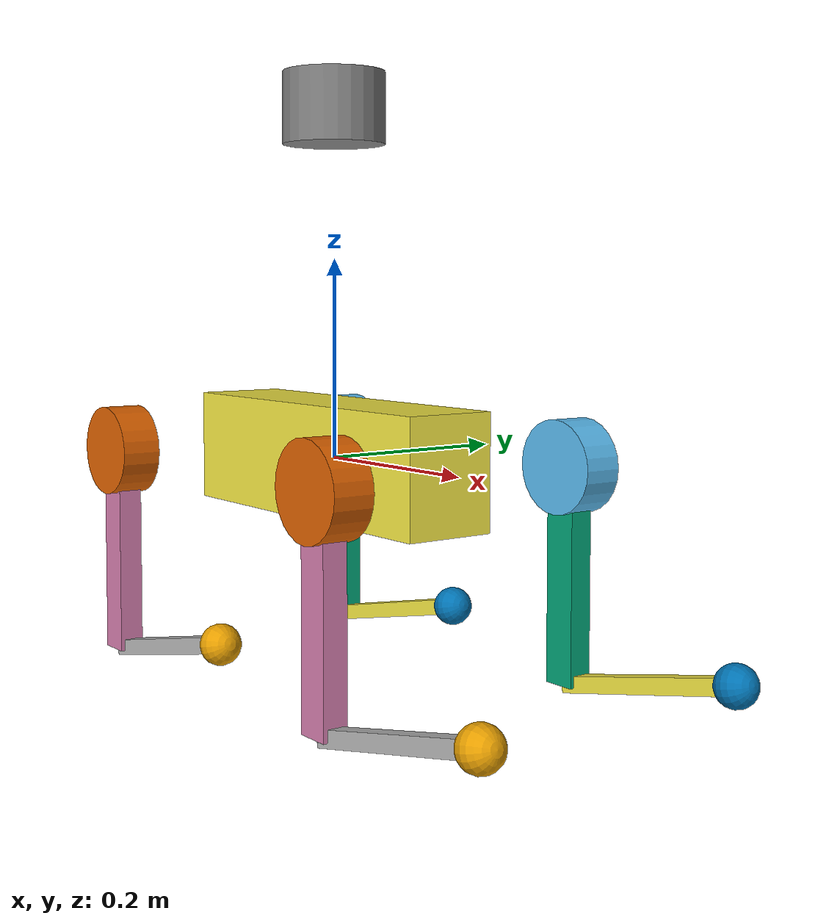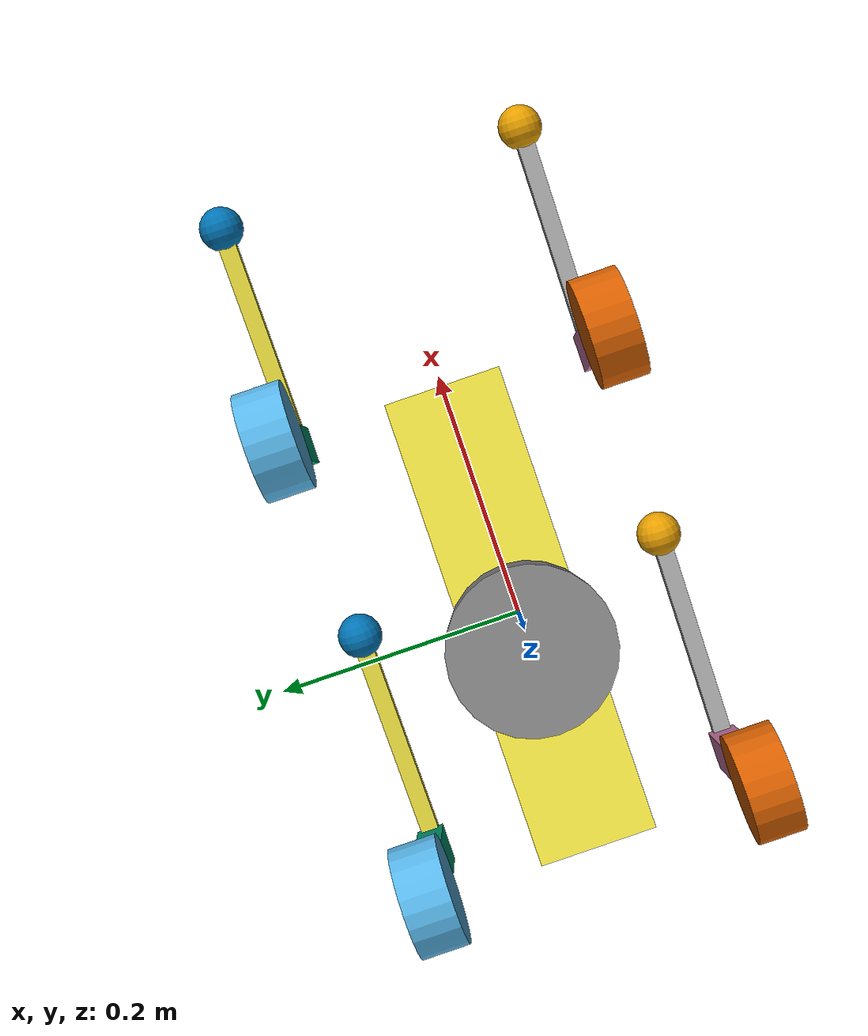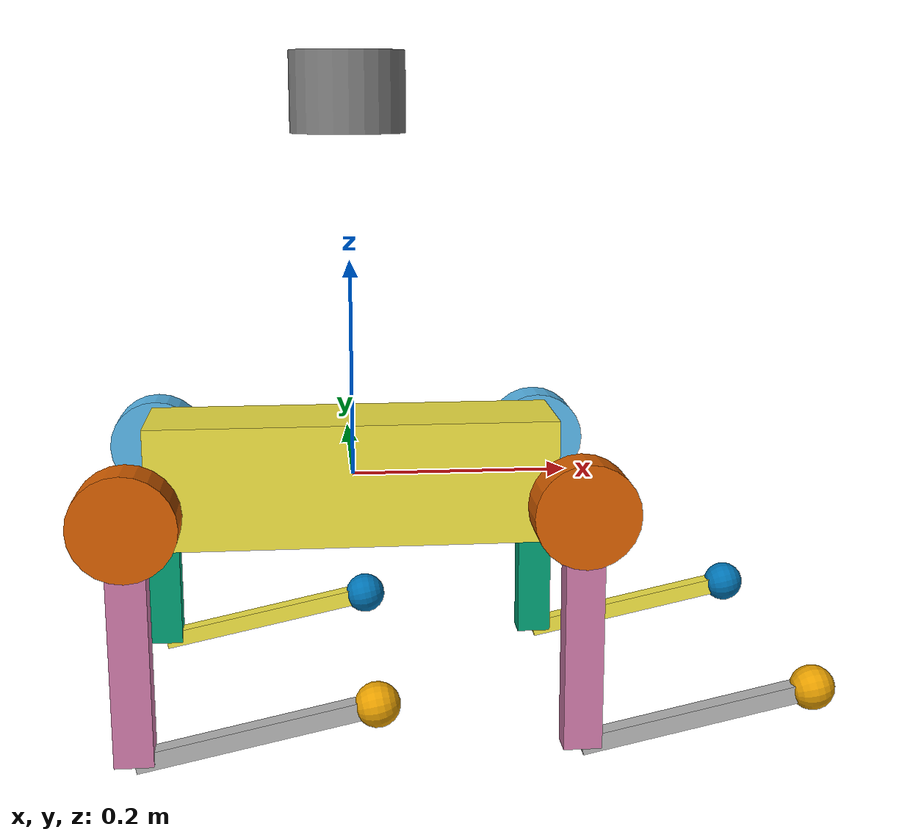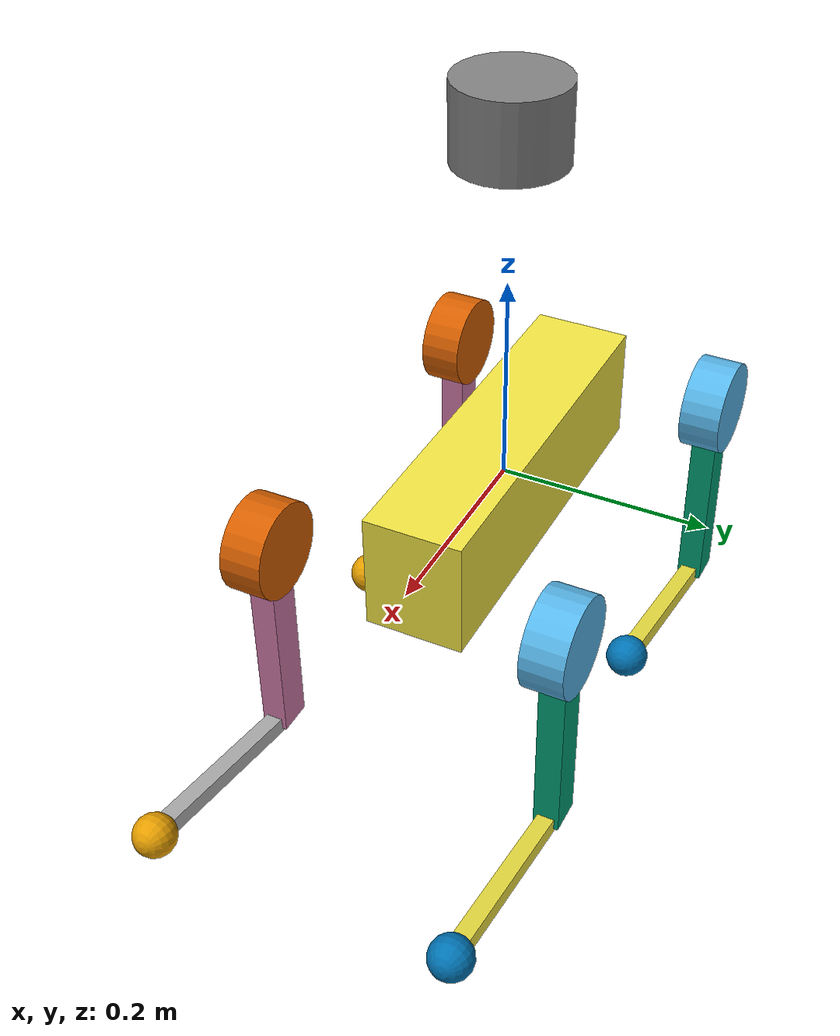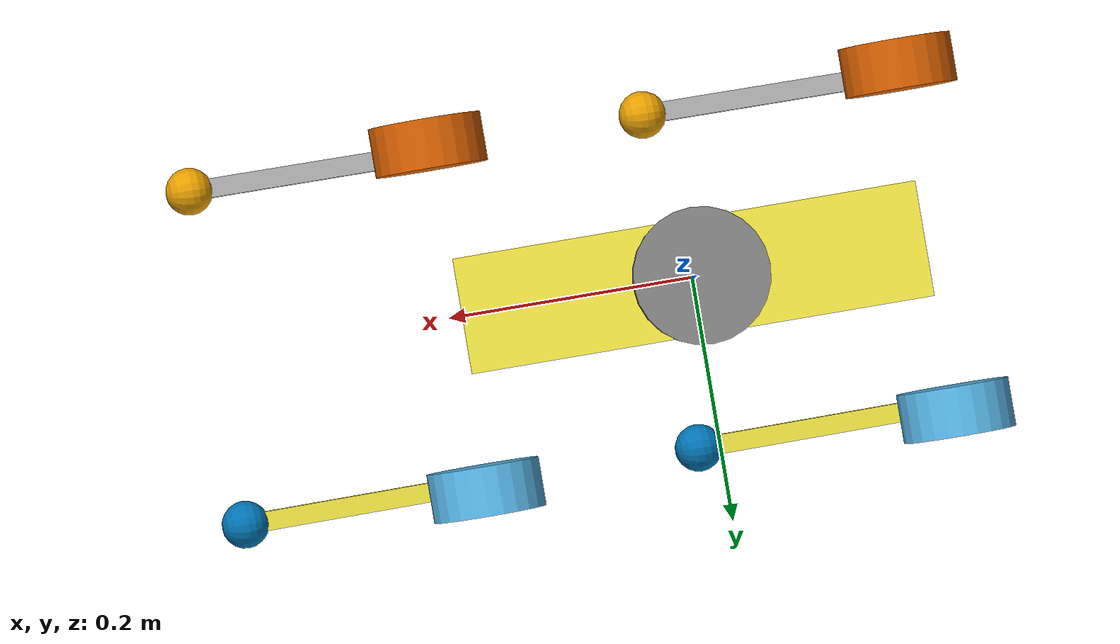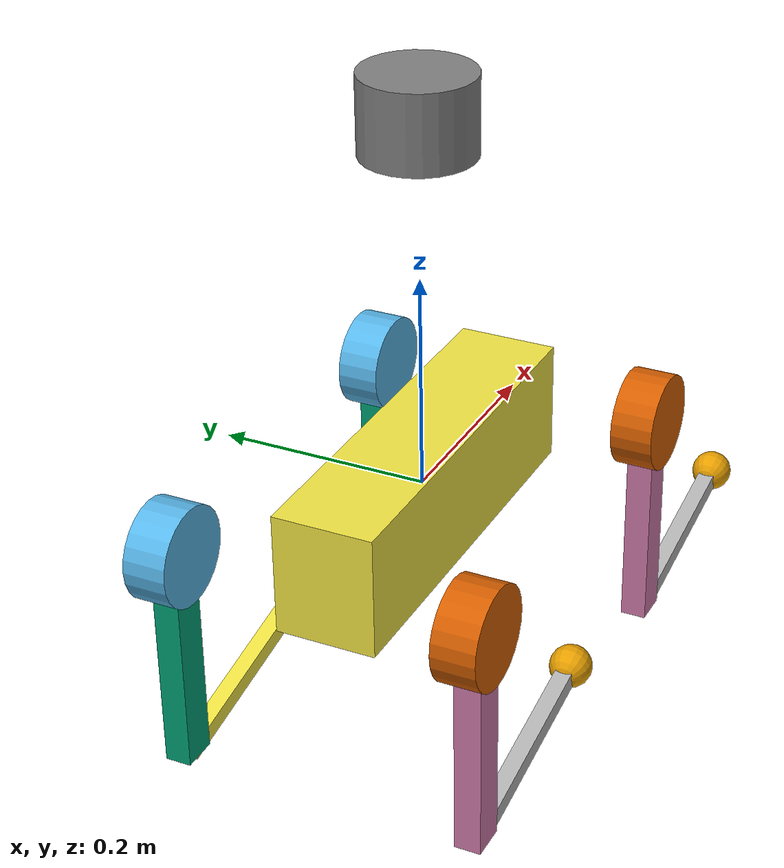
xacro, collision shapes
<?xml version="1.0"?>
<!--
  Go2 Robot with Velodyne VLP-16 3D Lidar
  This variant is for use with the CMU autonomy stack which requires 3D point clouds.
-->
<robot name="go2_3d" xmlns:xacro="http://www.ros.org/wiki/xacro">
    <xacro:arg name="DEBUG" default="false"/>

    <!-- Include the base Go2 robot -->
    <xacro:include filename="$(find go2_description)/xacro/robot.xacro"/>

    <!-- Include Velodyne 3D lidar -->
    <xacro:include filename="$(find go2_gazebo_sim)/urdf/velodyne_lidar.xacro"/>

    <!-- Add the Velodyne sensor to the robot -->
    <xacro:velodyne_lidar parent_link="base_link"/>

</robot>

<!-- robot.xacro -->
<robot name="go2" xmlns:xacro="http://www.ros.org/wiki/xacro">

    <xacro:arg name="DEBUG" default="false"/>

    <xacro:include filename="$(find go2_description)/xacro/const.xacro"/>
    <xacro:include filename="$(find go2_description)/xacro/materials.xacro"/>
    <xacro:include filename="$(find go2_description)/xacro/leg.xacro"/>
    <xacro:include filename="$(find go2_description)/xacro/gazebo.xacro"/>
    <xacro:include filename="$(find go2_description)/xacro/livox_mid360.xacro"/>

    <!-- Rotor related joint and link is only for demonstrate location. -->
    <!-- Actually, the rotor will rotate and the joint is not fixed. Reduction ratio should be considered. -->

    <!-- Debug mode will hung up the robot, use "true" or "false" to switch it. -->
    <xacro:if value="$(arg DEBUG)">
        <link name="world"/>
        <joint name="base_static_joint" type="fixed">
            <origin rpy="0 0 0" xyz="0 0 0"/>
            <parent link="world"/>
            <child link="base_link"/>
        </joint>
    </xacro:if>

    <link name="base_link">
        <visual>
            <origin rpy="0 0 0" xyz="0 0 0"/>
            <geometry>
                <box size="0.001 0.001 0.001"/>
            </geometry>
        </visual>
    </link>

    <joint name="floating_base" type="fixed">
        <origin rpy="0 0 0" xyz="0 0 0"/>
        <parent link="base_link"/>
        <child link="trunk"/>
    </joint>

    <link name="trunk">
        <visual>
            <origin rpy="0 0 0" xyz="0 0 0"/>
            <geometry>
                <mesh filename="file://$(find go2_description)/meshes/trunk.dae" scale="1 1 1"/>
            </geometry>
        </visual>
        <collision>
            <origin rpy="0 0 0" xyz="0 0 0"/>
            <geometry>
                <box size="${trunk_length} ${trunk_width} ${trunk_height}"/>
            </geometry>
        </collision>
        <inertial>
            <origin rpy="0 0 0" xyz="${trunk_com_x} ${trunk_com_y} ${trunk_com_z}"/>
            <mass value="${trunk_mass}"/>
            <inertia
                ixx="${trunk_ixx}" ixy="${trunk_ixy}" ixz="${trunk_ixz}"
                iyy="${trunk_iyy}" iyz="${trunk_iyz}"
                izz="${trunk_izz}"/>
        </inertial>
    </link>

    <joint name="imu_joint" type="fixed">
        <parent link="trunk"/>
        <child link="imu_link"/>
        <origin rpy="0 0 0" xyz="0 0 0"/>
    </joint>

    <link name="imu_link">
        <inertial>
            <mass value="0.001"/>
            <origin rpy="0 0 0" xyz="0 0 0"/>
            <inertia ixx="0.0001" ixy="0" ixz="0" iyy="0.0001" iyz="0" izz="0.0001"/>
        </inertial>
        <visual>
            <origin rpy="0 0 0" xyz="0 0 0"/>
            <geometry>
                <box size="0.001 0.001 0.001"/>
            </geometry>
        </visual>
        <collision>
            <origin rpy="0 0 0" xyz="0 0 0"/>
            <geometry>
                <box size=".001 .001 .001"/>
            </geometry>
        </collision>
    </link>

    <xacro:leg name="rf" mirror="-1" mirror_dae= "False" front_hind="1"  front_hind_dae="True"  />
    <xacro:leg name="lf" mirror="1"  mirror_dae="True"   front_hind="1"  front_hind_dae="True"  />
    <xacro:leg name="rh" mirror="-1" mirror_dae="False"  front_hind="-1" front_hind_dae="False" />
    <xacro:leg name="lh" mirror="1"  mirror_dae="True"   front_hind="-1" front_hind_dae="False" />

</robot>

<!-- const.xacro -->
<robot xmlns:xacro="http://www.ros.org/wiki/xacro">

    <!-- Constants for robot dimensions -->
    <xacro:property name="PI" value="3.1415926535897931"/>
    <xacro:property name="stick_mass" value="0.00001"/>

    <!-- simplified collision value -->
    <xacro:property name="trunk_width" value="0.0935"/>
    <xacro:property name="trunk_length" value="0.3762"/>
    <xacro:property name="trunk_height" value="0.114"/>
    <xacro:property name="hip_radius" value="0.046"/>
    <xacro:property name="hip_length" value="0.04"/>
    <xacro:property name="thigh_shoulder_radius" value="0.041"/>
    <xacro:property name="thigh_shoulder_length" value="0.032"/>
    <xacro:property name="thigh_width" value="0.0245"/>
    <xacro:property name="thigh_height" value="0.034"/>
    <xacro:property name="calf_width" value="0.016"/>
    <xacro:property name="calf_height" value="0.016"/>
    <xacro:property name="foot_radius" value="0.02"/>
    <xacro:property name="stick_radius" value="0.01"/>
    <xacro:property name="stick_length" value="0.2"/>

    <!-- kinematic value -->
    <xacro:property name="thigh_offset" value="0.0955"/>
    <xacro:property name="thigh_length" value="0.213"/>
    <xacro:property name="calf_length" value="0.213"/>

    <!-- leg offset from trunk center value -->
    <xacro:property name="leg_offset_x" value="0.1934"/>
    <xacro:property name="leg_offset_y" value="0.0465"/>
    <xacro:property name="hip_offset" value="0.0955"/>

    <!-- offset of link locations (left front) -->
    <xacro:property name="hip_offset_x" value="0.1934"/>
    <xacro:property name="hip_offset_y" value="0.0465"/>
    <xacro:property name="hip_offset_z" value="0.0"/>

    <xacro:property name="thigh_offset_x" value="0"/>
    <xacro:property name="thigh_offset_y" value="0.0955"/>
    <xacro:property name="thigh_offset_z" value="0.0"/>

    <xacro:property name="calf_offset_x" value="0.0"/>
    <xacro:property name="calf_offset_y" value="0.0"/>
    <xacro:property name="calf_offset_z" value="-0.213"/>

    <!-- joint limits -->
    <xacro:property name="damping" value="0.0"/>
    <xacro:property name="friction" value="0.0"/>
    <xacro:property name="hip_position_max" value="1.0472"/>
    <xacro:property name="hip_position_min" value="-1.0472"/>
    <xacro:property name="hip_velocity_max" value="30.1"/>
    <xacro:property name="hip_torque_max" value="23.7"/>
    <xacro:property name="thigh_position_max" value="3.4907"/>
    <xacro:property name="thigh_position_min" value="-1.5708"/>
    <xacro:property name="thigh_velocity_max" value="30.1"/>
    <xacro:property name="thigh_torque_max" value="23.7"/>
    <xacro:property name="calf_position_max" value="-0.83776"/>
    <xacro:property name="calf_position_min" value="-2.7227"/>
    <xacro:property name="calf_velocity_max" value="20.06"/>
    <xacro:property name="calf_torque_max" value="35.55"/>

    <!-- dynamics inertial value -->
    <!-- trunk -->
    <xacro:property name="trunk_mass" value="6.921"/>
    <xacro:property name="trunk_com_x" value="0.021112"/>
    <xacro:property name="trunk_com_y" value="0.00"/>
    <xacro:property name="trunk_com_z" value="-0.005366"/>
    <xacro:property name="trunk_ixx" value="0.02448"/>
    <xacro:property name="trunk_ixy" value="0.00012166"/>
    <xacro:property name="trunk_ixz" value="0.0014849"/>
    <xacro:property name="trunk_iyy" value="0.098077"/>
    <xacro:property name="trunk_iyz" value="-3.12E-05"/>
    <xacro:property name="trunk_izz" value="0.107"/>

    <!-- hip (left front) -->
    <xacro:property name="hip_mass" value="0.678"/>
    <xacro:property name="hip_com_x" value="-0.0054"/>
    <xacro:property name="hip_com_y" value="0.00194"/>
    <xacro:property name="hip_com_z" value="-0.000105"/>
    <xacro:property name="hip_ixx" value="0.00048"/>
    <xacro:property name="hip_ixy" value="-3.01E-06"/>
    <xacro:property name="hip_ixz" value="1.11E-06"/>
    <xacro:property name="hip_iyy" value="0.000884"/>
    <xacro:property name="hip_iyz" value="-1.42E-06"/>
    <xacro:property name="hip_izz" value="0.000596"/>

    <!-- thigh -->
    <xacro:property name="thigh_mass" value="1.152"/>
    <xacro:property name="thigh_com_x" value="-0.00374"/>
    <xacro:property name="thigh_com_y" value="-0.0223"/>
    <xacro:property name="thigh_com_z" value="-0.0327"/>
    <xacro:property name="thigh_ixx" value="0.00584"/>
    <xacro:property name="thigh_ixy" value="8.72E-05"/>
    <xacro:property name="thigh_ixz" value="-0.000289"/>
    <xacro:property name="thigh_iyy" value="0.0058"/>
    <xacro:property name="thigh_iyz" value="0.000808"/>
    <xacro:property name="thigh_izz" value="0.00103"/>

    <!-- calf -->
    <xacro:property name="calf_mass" value="0.154"/>
    <xacro:property name="calf_com_x" value="0.00548"/>
    <xacro:property name="calf_com_y" value="-0.000975"/>
    <xacro:property name="calf_com_z" value="-0.115"/>
    <xacro:property name="calf_ixx" value="0.00108"/>
    <xacro:property name="calf_ixy" value="3.4E-07"/>
    <xacro:property name="calf_ixz" value="1.72E-05"/>
    <xacro:property name="calf_iyy" value="0.0011"/>
    <xacro:property name="calf_iyz" value="8.28E-06"/>
    <xacro:property name="calf_izz" value="3.29E-05"/>

    <!-- foot -->
    <xacro:property name="foot_mass" value="0.06"/>

</robot>

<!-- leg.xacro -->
<robot xmlns:xacro="http://www.ros.org/wiki/xacro">

    <xacro:macro name="leg" params="name mirror mirror_dae front_hind front_hind_dae">

        <joint name="${name}_hip_joint" type="revolute">
            <xacro:if value="${(mirror_dae == False) and (front_hind_dae == True)}">
                <origin rpy="0 0 0" xyz="${leg_offset_x} ${-leg_offset_y} 0"/>
            </xacro:if>
            <xacro:if value="${(mirror_dae == True) and (front_hind_dae == True)}">
                <origin rpy="0 0 0" xyz="${leg_offset_x} ${leg_offset_y} 0"/>
            </xacro:if>
            <xacro:if value="${(mirror_dae == False) and (front_hind_dae == False)}">
                <origin rpy="0 0 0" xyz="${-leg_offset_x} ${-leg_offset_y} 0"/>
            </xacro:if>
            <xacro:if value="${(mirror_dae == True) and (front_hind_dae == False)}">
                <origin rpy="0 0 0" xyz="${-leg_offset_x} ${leg_offset_y} 0"/>
            </xacro:if>
            <parent link="trunk"/>
            <child link="${name}_hip_link"/>
            <axis xyz="1 0 0"/>
            <dynamics damping="${damping}" friction="${friction}"/>
            <xacro:if value="${(mirror_dae == True)}">
                <limit effort="${hip_torque_max}" velocity="${hip_velocity_max}" lower="${hip_position_min}" upper="${hip_position_max}"/>
            </xacro:if>
            <xacro:if value="${(mirror_dae == False)}">
                <limit effort="${hip_torque_max}" velocity="${hip_velocity_max}" lower="${-hip_position_max}" upper="${-hip_position_min}"/>
            </xacro:if>
        </joint>

        <link name="${name}_hip_link">
            <visual>
                <xacro:if value="${(mirror_dae == True) and (front_hind_dae == True)}">
                    <origin rpy="0 0 0" xyz="0 0 0"/>
                </xacro:if>
                <xacro:if value="${(mirror_dae == False) and (front_hind_dae == True)}">
                    <origin rpy="${PI} 0 0" xyz="0 0 0"/>
                </xacro:if>
                <xacro:if value="${(mirror_dae == True) and (front_hind_dae == False)}">
                    <origin rpy="0 ${PI} 0" xyz="0 0 0"/>
                </xacro:if>
                <xacro:if value="${(mirror_dae == False) and (front_hind_dae == False)}">
                    <origin rpy="${PI} ${PI} 0" xyz="0 0 0"/>
                </xacro:if>
                <geometry>
                    <mesh filename="file://$(find go2_description)/meshes/hip.dae" scale="1 1 1"/>
                </geometry>
            </visual>
            <collision>
                <origin rpy="${PI/2.0} 0 0" xyz="0 ${hip_offset*mirror} 0"/>
                <geometry>
                    <cylinder length="${hip_length}" radius="${hip_radius}"/>
                </geometry>
            </collision>
            <inertial>
                <origin rpy="0 0 0" xyz="${hip_com_x*front_hind} ${hip_com_y*mirror} ${hip_com_z}"/>
                <mass value="${hip_mass}"/>
                <inertia
                    ixx="${hip_ixx}" ixy="${hip_ixy*mirror*front_hind}" ixz="${hip_ixz*front_hind}"
                    iyy="${hip_iyy}" iyz="${hip_iyz*mirror}"
                    izz="${hip_izz}"/>
            </inertial>
        </link>

        <joint name="${name}_upper_leg_joint" type="revolute">
            <origin rpy="0 0 0" xyz="0 ${thigh_offset*mirror} 0"/>
            <parent link="${name}_hip_link"/>
            <child link="${name}_upper_leg_link"/>
            <axis xyz="0 1 0"/>
            <dynamics damping="${damping}" friction="${friction}"/>
            <limit effort="${thigh_torque_max}" velocity="${thigh_velocity_max}" lower="${thigh_position_min}" upper="${thigh_position_max}"/>
        </joint>

        <link name="${name}_upper_leg_link">
            <visual>
                <origin rpy="0 0 0" xyz="0 0 0"/>
                <geometry>
                    <xacro:if value="${mirror_dae == True}">
                        <mesh filename="file://$(find go2_description)/meshes/thigh.dae" scale="1 1 1"/>
                    </xacro:if>
                    <xacro:if value="${mirror_dae == False}">
                        <mesh filename="file://$(find go2_description)/meshes/thigh_mirror.dae" scale="1 1 1"/>
                    </xacro:if>
                </geometry>
            </visual>
            <collision>
                <origin rpy="0 ${PI/2.0} 0" xyz="0 0 ${-thigh_length/2.0}"/>
                <geometry>
                    <box size="${thigh_length} ${thigh_width} ${thigh_height}"/>
                </geometry>
            </collision>
            <inertial>
                <origin rpy="0 0 0" xyz="${thigh_com_x} ${thigh_com_y*mirror} ${thigh_com_z}"/>
                <mass value="${thigh_mass}"/>
                <inertia
                    ixx="${thigh_ixx}" ixy="${thigh_ixy*mirror}" ixz="${thigh_ixz}"
                    iyy="${thigh_iyy}" iyz="${thigh_iyz*mirror}"
                    izz="${thigh_izz}"/>
            </inertial>
        </link>

        <joint name="${name}_lower_leg_joint" type="revolute">
            <origin rpy="0 0 0" xyz="0 0 ${-thigh_length}"/>
            <parent link="${name}_upper_leg_link"/>
            <child link="${name}_lower_leg_link"/>
            <axis xyz="0 1 0"/>
            <dynamics damping="${damping}" friction="${friction}"/>
            <limit effort="${calf_torque_max}" velocity="${calf_velocity_max}" lower="${calf_position_min}" upper="${calf_position_max}"/>
        </joint>

        <link name="${name}_lower_leg_link">
            <visual>
                <origin rpy="0 0 0" xyz="0 0 0"/>
                <geometry>
                    <mesh filename="file://$(find go2_description)/meshes/calf.dae" scale="1 1 1"/>
                </geometry>
            </visual>
            <collision>
                <origin rpy="0 ${PI/2.0} 0" xyz="0 0 ${-calf_length/2.0}"/>
                <geometry>
                    <box size="${calf_length} ${calf_width} ${calf_height}"/>
                </geometry>
            </collision>
            <inertial>
                <origin rpy="0 0 0" xyz="${calf_com_x} ${calf_com_y} ${calf_com_z}"/>
                <mass value="${calf_mass}"/>
                <inertia
                    ixx="${calf_ixx}" ixy="${calf_ixy}" ixz="${calf_ixz}"
                    iyy="${calf_iyy}" iyz="${calf_iyz}"
                    izz="${calf_izz}"/>
            </inertial>
        </link>

        <joint name="${name}_foot_joint" type="fixed">
            <origin rpy="0 0 0" xyz="0 0 ${-(calf_length)}"/>
            <parent link="${name}_lower_leg_link"/>
            <child link="${name}_foot_link"/>
        </joint>

        <link name="${name}_foot_link">
            <visual>
                <origin rpy="0 0 0" xyz="0 0 0"/>
                <geometry>
                    <sphere radius="${foot_radius-0.01}"/>
                </geometry>
            </visual>
            <collision>
                <origin rpy="0 0 0" xyz="0 0 0"/>
                <geometry>
                    <sphere radius="${foot_radius}"/>
                </geometry>
            </collision>
            <inertial>
                <mass value="${foot_mass}"/>
                <inertia
                    ixx="${(2*foot_mass)/5.0*(foot_radius*foot_radius)}" ixy="0.0" ixz="0.0"
                    iyy="${(2*foot_mass)/5.0*(foot_radius*foot_radius)}" iyz="0.0"
                    izz="${(2*foot_mass)/5.0*(foot_radius*foot_radius)}"/>
            </inertial>
        </link>

        <ros2_control name="${name}" type="system">
            <hardware>
                <plugin>gazebo_ros2_control/GazeboSystem</plugin>
            </hardware>
            <joint name="${name}_hip_joint">
                <command_interface name="effort"/>
                <state_interface name="position"/>
                <state_interface name="velocity"/>
            </joint>

            <joint name="${name}_upper_leg_joint">
                <command_interface name="effort"/>
                <state_interface name="position"/>
                <state_interface name="velocity"/>
            </joint>

            <joint name="${name}_lower_leg_joint">
                <command_interface name="effort"/>
                <state_interface name="position"/>
                <state_interface name="velocity"/>
            </joint>
        </ros2_control>

    </xacro:macro>
</robot>

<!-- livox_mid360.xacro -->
<robot xmlns:xacro="http://www.ros.org/wiki/xacro">
    <joint name="livox_mid360_mount_joint" type="fixed">
        <parent link="trunk"/>
        <child link="livox_mid360_base"/>
        <origin xyz="0.08 0 0.12" rpy="-0.036809 0.263591 0"/>
    </joint>
    <link name="livox_mid360_base">
        <visual>
            <origin xyz="0 0 0" rpy="0 0 0"/>
            <geometry>
                <cylinder length="0.05" radius="0.046"/>
            </geometry>
            <material name="black">
                <color rgba="0.1 0.1 0.1 1.0"/>
            </material>
        </visual>
        <inertial>
            <mass value="0.001"/>
            <origin xyz="0 0 0" rpy="0 0 0"/>
            <inertia ixx="1e-6" ixy="0" ixz="0" iyy="1e-6" iyz="0" izz="1e-6"/>
        </inertial>
    </link>

    <joint name="livox_mid360_imu_joint" type="fixed">
        <parent link="livox_mid360_base"/>
        <child link="livox_mid360_imu"/>
        <origin xyz="-0.011 -0.02329 0.04412" rpy="0 0 0"/>
    </joint>
    <link name="livox_mid360_imu">
        <inertial>
            <mass value="0.001"/>
            <origin xyz="0 0 0" rpy="0 0 0"/>
            <inertia ixx="1e-6" ixy="0" ixz="0" iyy="1e-6" iyz="0" izz="1e-6"/>
        </inertial>
    </link>
</robot>

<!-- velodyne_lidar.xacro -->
<!--
  Velodyne VLP-16 3D Lidar for Go2 Robot
  Publishes sensor_msgs/PointCloud2 on /velodyne_points
  For use with CMU autonomy stack (terrain_analysis + local_planner)
-->
<robot xmlns:xacro="http://www.ros.org/wiki/xacro">
    <xacro:macro name="velodyne_lidar" params="parent_link:=base_link">

        <!-- Velodyne mounting joint -->
        <joint name="velodyne_mount_joint" type="fixed">
            <origin xyz="0.0 0.0 0.35" rpy="0 0 0"/>  <!-- Mounted on top of robot -->
            <parent link="${parent_link}"/>
            <child link="velodyne_base_link"/>
        </joint>

        <!-- Velodyne base link -->
        <link name="velodyne_base_link">
            <inertial>
                <mass value="0.83"/>  <!-- VLP-16 weight -->
                <origin xyz="0 0 0.03585"/>
                <inertia ixx="0.000908" ixy="0" ixz="0" iyy="0.000908" iyz="0" izz="0.0011"/>
            </inertial>
            <visual>
                <origin xyz="0 0 0"/>
                <geometry>
                    <cylinder radius="0.0516" length="0.0717"/>
                </geometry>
                <material name="velodyne_grey">
                    <color rgba="0.5 0.5 0.5 1"/>
                </material>
            </visual>
            <collision>
                <origin xyz="0 0 0"/>
                <geometry>
                    <cylinder radius="0.0516" length="0.0717"/>
                </geometry>
            </collision>
        </link>

        <!-- Velodyne sensor frame (spinning part) -->
        <joint name="velodyne_sensor_joint" type="fixed">
            <origin xyz="0 0 0.03585" rpy="0 0 0"/>
            <parent link="velodyne_base_link"/>
            <child link="velodyne"/>
        </joint>

        <link name="velodyne">
            <inertial>
                <mass value="0.01"/>
                <origin xyz="0 0 0"/>
                <inertia ixx="1e-7" ixy="0" ixz="0" iyy="1e-7" iyz="0" izz="1e-7"/>
            </inertial>
        </link>

        <!-- Gazebo Velodyne plugin (VLP-16 configuration) -->
        <gazebo reference="velodyne">
            <sensor type="ray" name="velodyne_sensor">
                <pose>0 0 0 0 0 0</pose>
                <visualize>false</visualize>
                <update_rate>10</update_rate>  <!-- 10 Hz scan rate -->
                <ray>
                    <scan>
                        <horizontal>
                            <samples>360</samples>  <!-- Angular resolution: 1 degree -->
                            <resolution>1</resolution>
                            <min_angle>-3.14159</min_angle>  <!-- -180 degrees -->
                            <max_angle>3.14159</max_angle>   <!-- +180 degrees -->
                        </horizontal>
                        <vertical>
                            <samples>16</samples>  <!-- VLP-16 has 16 channels -->
                            <resolution>1</resolution>
                            <min_angle>-0.2618</min_angle>  <!-- -15 degrees -->
                            <max_angle>0.2618</max_angle>   <!-- +15 degrees -->
                        </vertical>
                    </scan>
                    <range>
                        <min>0.3</min>    <!-- 0.3m minimum range -->
                        <max>100.0</max>  <!-- 100m maximum range -->
                        <resolution>0.01</resolution>
                    </range>
                    <noise>
                        <type>gaussian</type>
                        <mean>0.0</mean>
                        <stddev>0.02</stddev>  <!-- 2cm noise -->
                    </noise>
                </ray>

                <!-- Gazebo ROS plugin for PointCloud2 output -->
                <plugin name="gazebo_ros_velodyne" filename="libgazebo_ros_ray_sensor.so">
                    <ros>
                        <namespace>/</namespace>
                        <remapping>~/out:=velodyne_points</remapping>
                    </ros>
                    <output_type>sensor_msgs/PointCloud2</output_type>
                    <frame_name>velodyne</frame_name>
                    <min_intensity>0</min_intensity>
                </plugin>
            </sensor>
        </gazebo>

    </xacro:macro>
</robot>
